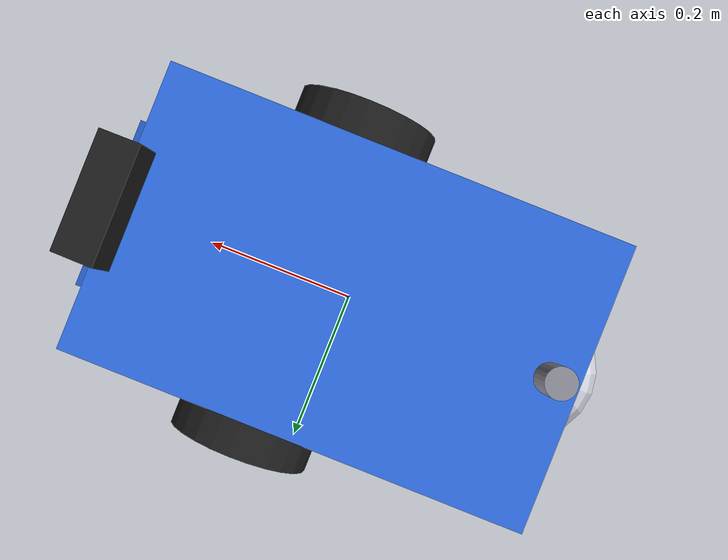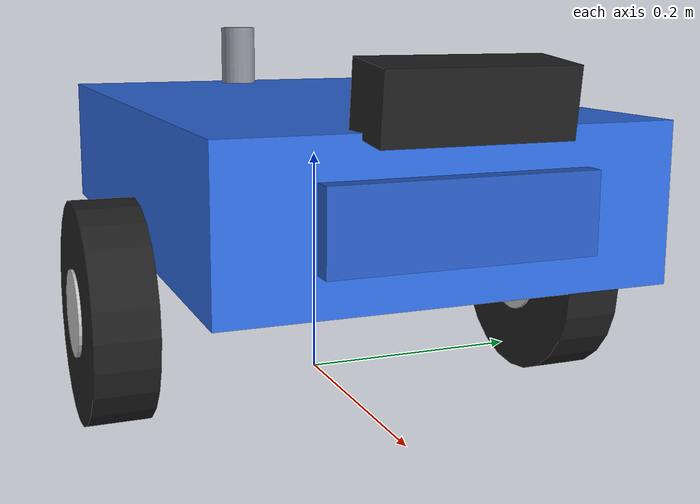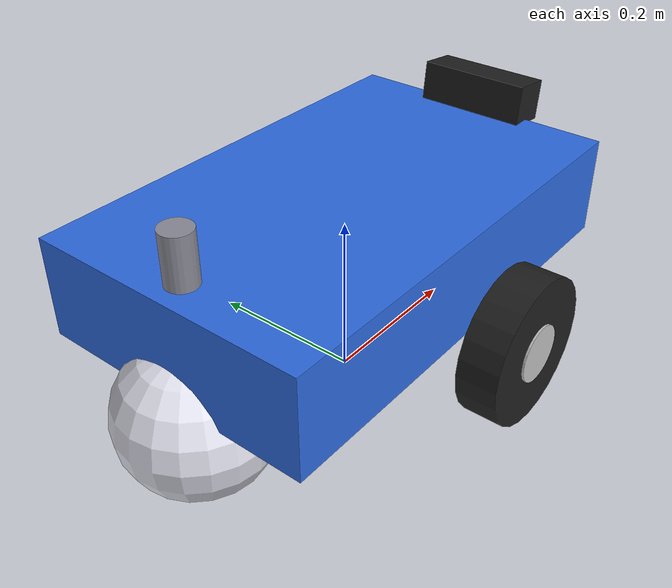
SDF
<?xml version="1.0"?>
<sdf version="1.8">
  <model name="ugv_bot">
    <!-- Axle height = wheel radius. Spawn with z ~= 0.09 -->
    <pose>0 0 0.09 0 0 0</pose>

    <link name="base_footprint"/>

    <link name="base_link">
      <pose>0 0 0.10 0 0 0</pose>
      <inertial>
        <mass>8.0</mass>
        <inertia>
          <ixx>0.14</ixx><ixy>0</ixy><ixz>0</ixz>
          <iyy>0.20</iyy><iyz>0</iyz><izz>0.22</izz>
        </inertia>
      </inertial>
      <collision name="chassis_col">
        <geometry><box><size>0.55 0.34 0.12</size></box></geometry>
      </collision>
      <visual name="chassis_vis">
        <geometry><box><size>0.55 0.34 0.12</size></box></geometry>
        <material>
          <ambient>0.12 0.32 0.70 1</ambient>
          <diffuse>0.18 0.42 0.88 1</diffuse>
        </material>
      </visual>
      <visual name="nose_vis">
        <pose>0.24 0 0.0 0 0 0</pose>
        <geometry><box><size>0.10 0.20 0.06</size></box></geometry>
        <material>
          <ambient>0.10 0.28 0.60 1</ambient>
          <diffuse>0.15 0.35 0.75 1</diffuse>
        </material>
      </visual>
    </link>

    <!-- Drive wheels: centers at z=0 (model frame) → touch ground -->
    <link name="wheel_left_link">
      <pose>0.06 0.20 0 0 0 0</pose>
      <inertial>
        <mass>1.0</mass>
        <inertia>
          <ixx>0.003</ixx><ixy>0</ixy><ixz>0</ixz>
          <iyy>0.003</iyy><iyz>0</iyz><izz>0.003</izz>
        </inertia>
      </inertial>
      <collision name="wl_col">
        <pose>0 0 0 1.5708 0 0</pose>
        <geometry><cylinder><radius>0.09</radius><length>0.05</length></cylinder></geometry>
      </collision>
      <visual name="wl_vis">
        <pose>0 0 0 1.5708 0 0</pose>
        <geometry><cylinder><radius>0.09</radius><length>0.05</length></cylinder></geometry>
        <material>
          <ambient>0.08 0.08 0.08 1</ambient>
          <diffuse>0.12 0.12 0.12 1</diffuse>
        </material>
      </visual>
      <visual name="wl_hub">
        <pose>0 0 0 1.5708 0 0</pose>
        <geometry><cylinder><radius>0.035</radius><length>0.055</length></cylinder></geometry>
        <material>
          <ambient>0.55 0.55 0.55 1</ambient>
          <diffuse>0.75 0.75 0.75 1</diffuse>
        </material>
      </visual>
    </link>

    <link name="wheel_right_link">
      <pose>0.06 -0.20 0 0 0 0</pose>
      <inertial>
        <mass>1.0</mass>
        <inertia>
          <ixx>0.003</ixx><ixy>0</ixy><ixz>0</ixz>
          <iyy>0.003</iyy><iyz>0</iyz><izz>0.003</izz>
        </inertia>
      </inertial>
      <collision name="wr_col">
        <pose>0 0 0 1.5708 0 0</pose>
        <geometry><cylinder><radius>0.09</radius><length>0.05</length></cylinder></geometry>
      </collision>
      <visual name="wr_vis">
        <pose>0 0 0 1.5708 0 0</pose>
        <geometry><cylinder><radius>0.09</radius><length>0.05</length></cylinder></geometry>
        <material>
          <ambient>0.08 0.08 0.08 1</ambient>
          <diffuse>0.12 0.12 0.12 1</diffuse>
        </material>
      </visual>
      <visual name="wr_hub">
        <pose>0 0 0 1.5708 0 0</pose>
        <geometry><cylinder><radius>0.035</radius><length>0.055</length></cylinder></geometry>
        <material>
          <ambient>0.55 0.55 0.55 1</ambient>
          <diffuse>0.75 0.75 0.75 1</diffuse>
        </material>
      </visual>
    </link>

    <!-- Rear caster: silver ball + fork, same ground contact as drive wheels -->
    <link name="caster_link">
      <pose>-0.24 0 0 0 0 0</pose>
      <inertial>
        <mass>0.4</mass>
        <inertia>
          <ixx>0.0005</ixx><ixy>0</ixy><ixz>0</ixz>
          <iyy>0.0005</iyy><iyz>0</iyz><izz>0.0005</izz>
        </inertia>
      </inertial>
      <collision name="caster_ball_col">
        <geometry><sphere><radius>0.09</radius></sphere></geometry>
      </collision>
      <visual name="caster_ball_vis">
        <geometry><sphere><radius>0.09</radius></sphere></geometry>
        <material>
          <ambient>0.70 0.70 0.75 1</ambient>
          <diffuse>0.90 0.90 0.95 1</diffuse>
        </material>
      </visual>
      <visual name="caster_fork">
        <pose>0 0 0.10 0 0 0</pose>
        <geometry><box><size>0.05 0.10 0.08</size></box></geometry>
        <material>
          <ambient>0.35 0.35 0.40 1</ambient>
          <diffuse>0.50 0.50 0.55 1</diffuse>
        </material>
      </visual>
      <visual name="caster_stem">
        <pose>0 0 0.18 0 0 0</pose>
        <geometry><cylinder><radius>0.018</radius><length>0.08</length></cylinder></geometry>
        <material>
          <ambient>0.40 0.40 0.45 1</ambient>
          <diffuse>0.55 0.55 0.60 1</diffuse>
        </material>
      </visual>
    </link>

    <!-- Stereo camera mount (baseline 0.08 m). Left is primary RGB for segmentation. -->
    <link name="camera_link">
      <pose>0.28 0 0.18 0 0.12 0</pose>
      <inertial>
        <mass>0.05</mass>
        <inertia>
          <ixx>0.0001</ixx><ixy>0</ixy><ixz>0</ixz>
          <iyy>0.0001</iyy><iyz>0</iyz><izz>0.0001</izz>
        </inertia>
      </inertial>
      <collision name="cam_col">
        <geometry><box><size>0.05 0.14 0.05</size></box></geometry>
      </collision>
      <visual name="cam_vis">
        <geometry><box><size>0.05 0.14 0.05</size></box></geometry>
        <material>
          <ambient>0.05 0.05 0.05 1</ambient>
          <diffuse>0.12 0.12 0.12 1</diffuse>
        </material>
      </visual>
    </link>

    <link name="camera_left_link">
      <pose>0.28 0.04 0.18 0 0.12 0</pose>
      <inertial>
        <mass>0.01</mass>
        <inertia>
          <ixx>1e-5</ixx><ixy>0</ixy><ixz>0</ixz>
          <iyy>1e-5</iyy><iyz>0</iyz><izz>1e-5</izz>
        </inertia>
      </inertial>
      <sensor name="camera_left" type="camera">
        <always_on>true</always_on>
        <update_rate>20</update_rate>
        <topic>stereo/left/image_raw</topic>
        <gz_frame_id>camera_left_optical_frame</gz_frame_id>
        <camera>
          <horizontal_fov>1.396</horizontal_fov>
          <image>
            <width>640</width>
            <height>480</height>
            <format>R8G8B8</format>
          </image>
          <clip>
            <near>0.05</near>
            <far>50</far>
          </clip>
          <camera_info_topic>stereo/left/camera_info</camera_info_topic>
        </camera>
      </sensor>
      <!-- Legacy alias for UNet / RTAB remaps -->
      <sensor name="camera_mono_alias" type="camera">
        <always_on>true</always_on>
        <update_rate>20</update_rate>
        <topic>camera/image_raw</topic>
        <gz_frame_id>camera_left_optical_frame</gz_frame_id>
        <camera>
          <horizontal_fov>1.396</horizontal_fov>
          <image>
            <width>640</width>
            <height>480</height>
            <format>R8G8B8</format>
          </image>
          <clip>
            <near>0.05</near>
            <far>50</far>
          </clip>
          <camera_info_topic>camera/camera_info</camera_info_topic>
        </camera>
      </sensor>
      <!-- Stable Gazebo depth aligned with left (used as Depth block for VSLAM). -->
      <sensor name="depth_camera" type="depth_camera">
        <always_on>true</always_on>
        <update_rate>15</update_rate>
        <topic>camera/depth/image_raw</topic>
        <gz_frame_id>camera_left_optical_frame</gz_frame_id>
        <camera>
          <horizontal_fov>1.396</horizontal_fov>
          <image>
            <width>640</width>
            <height>480</height>
          </image>
          <clip>
            <near>0.10</near>
            <far>20.0</far>
          </clip>
          <camera_info_topic>camera/depth/camera_info</camera_info_topic>
        </camera>
      </sensor>
    </link>

    <link name="camera_right_link">
      <pose>0.28 -0.04 0.18 0 0.12 0</pose>
      <inertial>
        <mass>0.01</mass>
        <inertia>
          <ixx>1e-5</ixx><ixy>0</ixy><ixz>0</ixz>
          <iyy>1e-5</iyy><iyz>0</iyz><izz>1e-5</izz>
        </inertia>
      </inertial>
      <sensor name="camera_right" type="camera">
        <always_on>true</always_on>
        <update_rate>20</update_rate>
        <topic>stereo/right/image_raw</topic>
        <gz_frame_id>camera_right_optical_frame</gz_frame_id>
        <camera>
          <horizontal_fov>1.396</horizontal_fov>
          <image>
            <width>640</width>
            <height>480</height>
            <format>R8G8B8</format>
          </image>
          <clip>
            <near>0.05</near>
            <far>50</far>
          </clip>
          <camera_info_topic>stereo/right/camera_info</camera_info_topic>
        </camera>
      </sensor>
    </link>

    <link name="imu_link">
      <pose>0 0 0.16 0 0 0</pose>
      <inertial>
        <mass>0.01</mass>
        <inertia>
          <ixx>1e-5</ixx><ixy>0</ixy><ixz>0</ixz>
          <iyy>1e-5</iyy><iyz>0</iyz><izz>1e-5</izz>
        </inertia>
      </inertial>
      <sensor name="imu_sensor" type="imu">
        <always_on>true</always_on>
        <update_rate>100</update_rate>
        <topic>imu</topic>
        <gz_frame_id>imu_link</gz_frame_id>
        <imu>
          <angular_velocity>
            <x><noise type="gaussian"><mean>0</mean><stddev>0.0002</stddev></noise></x>
            <y><noise type="gaussian"><mean>0</mean><stddev>0.0002</stddev></noise></y>
            <z><noise type="gaussian"><mean>0</mean><stddev>0.0002</stddev></noise></z>
          </angular_velocity>
          <linear_acceleration>
            <x><noise type="gaussian"><mean>0</mean><stddev>0.01</stddev></noise></x>
            <y><noise type="gaussian"><mean>0</mean><stddev>0.01</stddev></noise></y>
            <z><noise type="gaussian"><mean>0</mean><stddev>0.01</stddev></noise></z>
          </linear_acceleration>
        </imu>
      </sensor>
    </link>

    <joint name="base_joint" type="fixed">
      <parent>base_footprint</parent>
      <child>base_link</child>
    </joint>
    <joint name="wheel_left_joint" type="revolute">
      <parent>base_link</parent>
      <child>wheel_left_link</child>
      <axis>
        <xyz>0 1 0</xyz>
        <limit><lower>-1e16</lower><upper>1e16</upper></limit>
      </axis>
    </joint>
    <joint name="wheel_right_joint" type="revolute">
      <parent>base_link</parent>
      <child>wheel_right_link</child>
      <axis>
        <xyz>0 1 0</xyz>
        <limit><lower>-1e16</lower><upper>1e16</upper></limit>
      </axis>
    </joint>
    <!-- Fixed caster (stable balance); visually a free-rolling ball -->
    <joint name="caster_joint" type="fixed">
      <parent>base_link</parent>
      <child>caster_link</child>
    </joint>
    <joint name="camera_joint" type="fixed">
      <parent>base_link</parent>
      <child>camera_link</child>
    </joint>
    <joint name="camera_left_joint" type="fixed">
      <parent>base_link</parent>
      <child>camera_left_link</child>
    </joint>
    <joint name="camera_right_joint" type="fixed">
      <parent>base_link</parent>
      <child>camera_right_link</child>
    </joint>
    <joint name="imu_joint" type="fixed">
      <parent>base_link</parent>
      <child>imu_link</child>
    </joint>

    <plugin filename="gz-sim-diff-drive-system" name="gz::sim::systems::DiffDrive">
      <left_joint>wheel_left_joint</left_joint>
      <right_joint>wheel_right_joint</right_joint>
      <wheel_separation>0.40</wheel_separation>
      <wheel_radius>0.09</wheel_radius>
      <max_linear_acceleration>2.0</max_linear_acceleration>
      <min_linear_acceleration>-2.0</min_linear_acceleration>
      <max_angular_acceleration>3.0</max_angular_acceleration>
      <min_angular_acceleration>-3.0</min_angular_acceleration>
      <topic>cmd_vel</topic>
      <!-- Wheel odom only; ROS EKF owns odom→base_footprint TF (do not bridge wheel/tf). -->
      <odom_topic>wheel/odom</odom_topic>
      <tf_topic>wheel/tf</tf_topic>
      <frame_id>odom</frame_id>
      <child_frame_id>base_footprint</child_frame_id>
      <odom_publish_frequency>30</odom_publish_frequency>
    </plugin>
    <plugin filename="gz-sim-joint-state-publisher-system" name="gz::sim::systems::JointStatePublisher">
      <topic>joint_states</topic>
    </plugin>
  </model>
</sdf>
